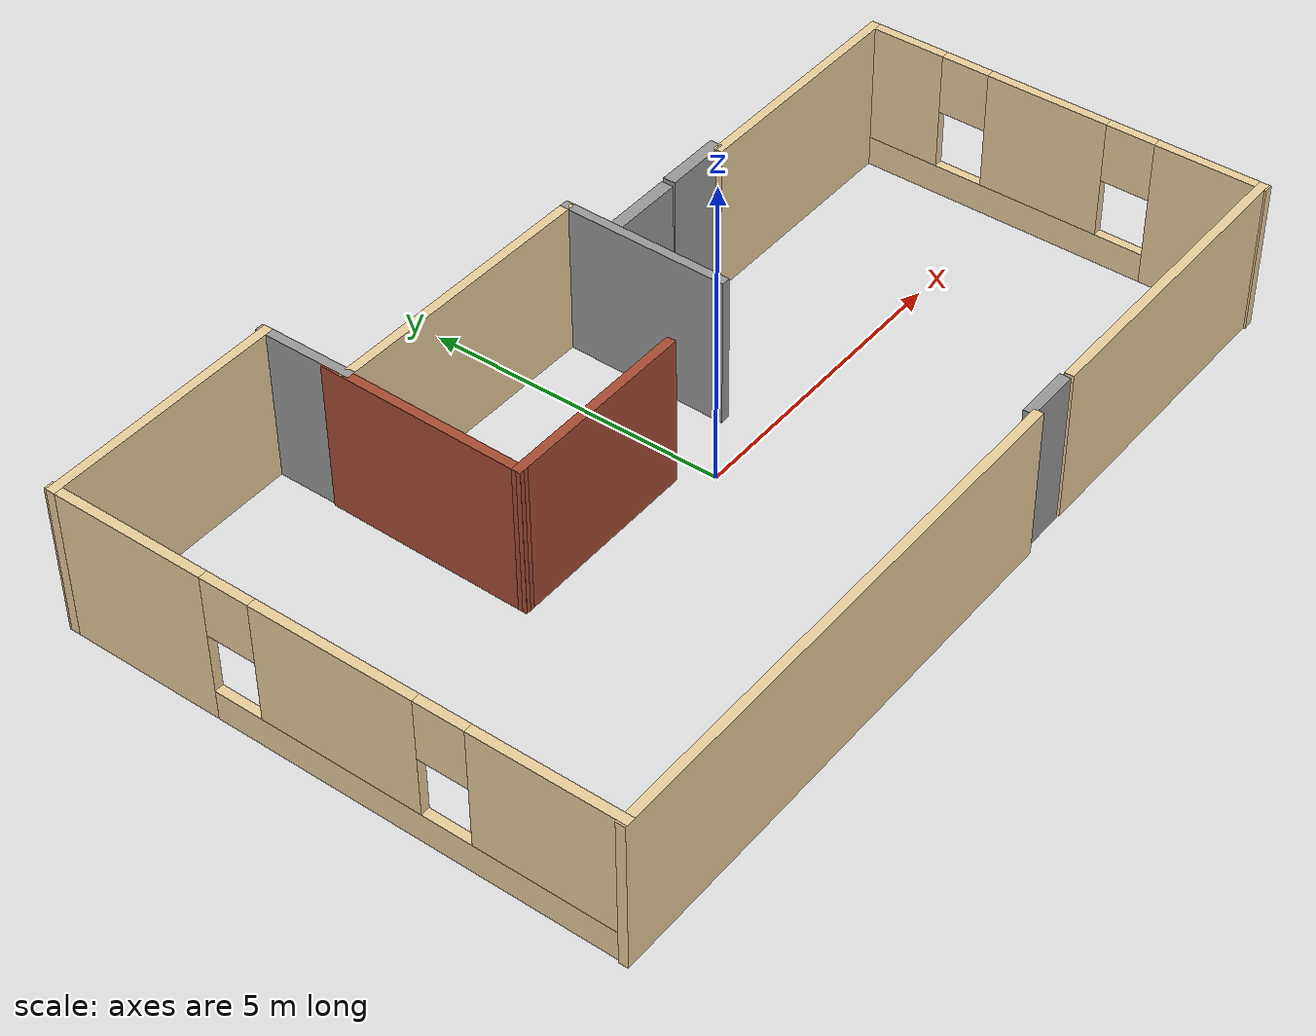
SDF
<?xml version='1.0'?>
<sdf version='1.7'>
  <model name='blossomsModel'>
    <pose>-0.049214 0.379374 0 0 -0 0</pose>
    <link name='Door_0'>
      <collision name='Door_0_Collision'>
        <geometry>
          <box>
            <size>0.9 0.17 2.5</size>
          </box>
        </geometry>
        <pose>0 0 1.25 0 -0 0</pose>
      </collision>
      <visual name='Door_0_Visual'>
        <pose>0 0 1.25 0 -0 0</pose>
        <geometry>
          <box>
            <size>0.9 0.17 2.5</size>
          </box>
        </geometry>
        <material>
          <script>
            <uri>file://media/materials/scripts/gazebo.material</uri>
            <name>Gazebo/Grey</name>
          </script>
        </material>
      </visual>
      <pose>1.72981 -4.45686 0 0 -0 0</pose>
    </link>
    <link name='Door_1'>
      <collision name='Door_1_Collision'>
        <geometry>
          <box>
            <size>1.206 0.2 2.5</size>
          </box>
        </geometry>
        <pose>0 0 1.25 0 -0 0</pose>
      </collision>
      <visual name='Door_1_Visual'>
        <pose>0 0 1.25 0 -0 0</pose>
        <geometry>
          <box>
            <size>1.206 0.2 2.5</size>
          </box>
        </geometry>
        <material>
          <script>
            <uri>file://media/materials/scripts/gazebo.material</uri>
            <name>Gazebo/Grey</name>
          </script>
        </material>
      </visual>
      <pose>1.73325 2.19076 0 0 -0 0</pose>
    </link>
    <link name='Door_2'>
      <collision name='Door_2_Collision'>
        <geometry>
          <box>
            <size>1.11 0.2 2.5</size>
          </box>
        </geometry>
        <pose>0 0 1.25 0 -0 0</pose>
      </collision>
      <visual name='Door_2_Visual'>
        <pose>0 0 1.25 0 -0 0</pose>
        <geometry>
          <box>
            <size>1.11 0.2 2.5</size>
          </box>
        </geometry>
        <material>
          <script>
            <uri>file://media/materials/scripts/gazebo.material</uri>
            <name>Gazebo/Grey</name>
          </script>
        </material>
      </visual>
      <pose>2.97215 2.22135 0 0 -0 0</pose>
    </link>
    <link name='Wall_0'>
      <collision name='Wall_0_Collision'>
        <geometry>
          <box>
            <size>2.84614 0.15 2.5</size>
          </box>
        </geometry>
        <pose>0 0 1.25 0 -0 0</pose>
      </collision>
      <visual name='Wall_0_Visual'>
        <pose>0 0 1.25 0 -0 0</pose>
        <geometry>
          <box>
            <size>2.84614 0.15 2.5</size>
          </box>
        </geometry>
        <material>
          <script>
            <uri>file://media/materials/scripts/gazebo.material</uri>
            <name>Gazebo/Grey</name>
          </script>
          <ambient>1 1 1 1</ambient>
        </material>
        <meta>
          <layer>0</layer>
        </meta>
      </visual>
      <pose>1.10271 1.66319 0 0 -0 1.55945</pose>
    </link>
    <link name='Wall_1'>
      <collision name='Wall_1_Collision'>
        <geometry>
          <box>
            <size>4.67868 0.15 2.5</size>
          </box>
        </geometry>
        <pose>0 0 1.25 0 -0 0</pose>
      </collision>
      <visual name='Wall_1_Visual'>
        <pose>0 0 1.25 0 -0 0</pose>
        <geometry>
          <box>
            <size>4.67868 0.15 2.5</size>
          </box>
        </geometry>
        <material>
          <script>
            <uri>file://media/materials/scripts/gazebo.material</uri>
            <name>Gazebo/Grey</name>
          </script>
          <ambient>0.921569 0.807843 0.615686 1</ambient>
        </material>
        <meta>
          <layer>0</layer>
        </meta>
      </visual>
      <pose>-1.17671 3.04177 0 0 -0 3.12808</pose>
    </link>
    <link name='Wall_10'>
      <collision name='Wall_10_Collision'>
        <geometry>
          <box>
            <size>5.1561 0.15 2.5</size>
          </box>
        </geometry>
        <pose>0 0 1.25 0 -0 0</pose>
      </collision>
      <visual name='Wall_10_Visual'>
        <pose>0 0 1.25 0 -0 0</pose>
        <geometry>
          <box>
            <size>5.1561 0.15 2.5</size>
          </box>
        </geometry>
        <material>
          <script>
            <uri>file://media/materials/scripts/gazebo.material</uri>
            <name>Gazebo/Grey</name>
          </script>
          <ambient>0.921569 0.807843 0.615686 1</ambient>
        </material>
        <meta>
          <layer>0</layer>
        </meta>
      </visual>
      <pose>4.8107 -4.4886 0 0 -0 -0.003494</pose>
    </link>
    <link name='Wall_11'>
      <pose>7.31374 -1.22794 0 0 -0 1.5708</pose>
      <visual name='Wall_11_Visual_0'>
        <pose>-2.47195 0 1.25 0 -0 0</pose>
        <geometry>
          <box>
            <size>1.80611 0.15 2.5</size>
          </box>
        </geometry>
        <material>
          <script>
            <uri>file://media/materials/scripts/gazebo.material</uri>
            <name>Gazebo/Grey</name>
          </script>
          <ambient>0.921569 0.807843 0.615686 1</ambient>
        </material>
        <meta>
          <layer>0</layer>
        </meta>
      </visual>
      <collision name='Wall_11_Collision_0'>
        <geometry>
          <box>
            <size>1.80611 0.15 2.5</size>
          </box>
        </geometry>
        <pose>-2.47195 0 1.25 0 -0 0</pose>
      </collision>
      <visual name='Wall_11_Visual_1'>
        <pose>0.903054 0 0.25 0 -0 0</pose>
        <geometry>
          <box>
            <size>4.94389 0.15 0.5</size>
          </box>
        </geometry>
        <material>
          <script>
            <uri>file://media/materials/scripts/gazebo.material</uri>
            <name>Gazebo/Grey</name>
          </script>
          <ambient>0.921569 0.807843 0.615686 1</ambient>
        </material>
        <meta>
          <layer>0</layer>
        </meta>
      </visual>
      <collision name='Wall_11_Collision_1'>
        <geometry>
          <box>
            <size>4.94389 0.15 0.5</size>
          </box>
        </geometry>
        <pose>0.903054 0 0.25 0 -0 0</pose>
      </collision>
      <visual name='Wall_11_Visual_2'>
        <pose>0.240919 0 1.5 0 -0 0</pose>
        <geometry>
          <box>
            <size>2.01962 0.15 2</size>
          </box>
        </geometry>
        <material>
          <script>
            <uri>file://media/materials/scripts/gazebo.material</uri>
            <name>Gazebo/Grey</name>
          </script>
          <ambient>0.921569 0.807843 0.615686 1</ambient>
        </material>
        <meta>
          <layer>0</layer>
        </meta>
      </visual>
      <collision name='Wall_11_Collision_2'>
        <geometry>
          <box>
            <size>2.01962 0.15 2</size>
          </box>
        </geometry>
        <pose>0.240919 0 1.5 0 -0 0</pose>
      </collision>
      <visual name='Wall_11_Visual_3'>
        <pose>2.71286 0 1.5 0 -0 0</pose>
        <geometry>
          <box>
            <size>1.32427 0.15 2</size>
          </box>
        </geometry>
        <material>
          <script>
            <uri>file://media/materials/scripts/gazebo.material</uri>
            <name>Gazebo/Grey</name>
          </script>
          <ambient>0.921569 0.807843 0.615686 1</ambient>
        </material>
        <meta>
          <layer>0</layer>
        </meta>
      </visual>
      <collision name='Wall_11_Collision_3'>
        <geometry>
          <box>
            <size>1.32427 0.15 2</size>
          </box>
        </geometry>
        <pose>2.71286 0 1.5 0 -0 0</pose>
      </collision>
      <visual name='Wall_11_Visual_4'>
        <pose>-1.16889 0 2 0 -0 0</pose>
        <geometry>
          <box>
            <size>0.8 0.15 1</size>
          </box>
        </geometry>
        <material>
          <script>
            <uri>file://media/materials/scripts/gazebo.material</uri>
            <name>Gazebo/Grey</name>
          </script>
          <ambient>0.921569 0.807843 0.615686 1</ambient>
        </material>
        <meta>
          <layer>0</layer>
        </meta>
      </visual>
      <collision name='Wall_11_Collision_4'>
        <geometry>
          <box>
            <size>0.8 0.15 1</size>
          </box>
        </geometry>
        <pose>-1.16889 0 2 0 -0 0</pose>
      </collision>
      <visual name='Wall_11_Visual_5'>
        <pose>1.65073 0 2 0 -0 0</pose>
        <geometry>
          <box>
            <size>0.8 0.15 1</size>
          </box>
        </geometry>
        <material>
          <script>
            <uri>file://media/materials/scripts/gazebo.material</uri>
            <name>Gazebo/Grey</name>
          </script>
          <ambient>0.921569 0.807843 0.615686 1</ambient>
        </material>
        <meta>
          <layer>0</layer>
        </meta>
      </visual>
      <collision name='Wall_11_Collision_5'>
        <geometry>
          <box>
            <size>0.8 0.15 1</size>
          </box>
        </geometry>
        <pose>1.65073 0 2 0 -0 0</pose>
      </collision>
    </link>
    <link name='Wall_12'>
      <collision name='Wall_12_Collision'>
        <geometry>
          <box>
            <size>4 0.15 2.5</size>
          </box>
        </geometry>
        <pose>0 0 1.25 0 -0 0</pose>
      </collision>
      <visual name='Wall_12_Visual'>
        <pose>0 0 1.25 0 -0 0</pose>
        <geometry>
          <box>
            <size>4 0.15 2.5</size>
          </box>
        </geometry>
        <material>
          <script>
            <uri>file://media/materials/scripts/gazebo.material</uri>
            <name>Gazebo/Grey</name>
          </script>
          <ambient>0.921569 0.807843 0.615686 1</ambient>
        </material>
        <meta>
          <layer>0</layer>
        </meta>
      </visual>
      <pose>5.38874 2.10265 0 0 -0 3.14159</pose>
    </link>
    <link name='Wall_2'>
      <collision name='Wall_2_Collision'>
        <geometry>
          <box>
            <size>1.63184 0.15 2.5</size>
          </box>
        </geometry>
        <pose>0 0 1.25 0 -0 0</pose>
      </collision>
      <visual name='Wall_2_Visual'>
        <pose>0 0 1.25 0 -0 0</pose>
        <geometry>
          <box>
            <size>1.63184 0.15 2.5</size>
          </box>
        </geometry>
        <material>
          <script>
            <uri>file://media/materials/scripts/gazebo.material</uri>
            <name>Gazebo/Grey</name>
          </script>
          <ambient>1 1 1 1</ambient>
        </material>
        <meta>
          <layer>0</layer>
        </meta>
      </visual>
      <pose>-3.41025 3.81328 0 0 -0 1.5708</pose>
    </link>
    <link name='Wall_3'>
      <collision name='Wall_3_Collision'>
        <geometry>
          <box>
            <size>4.02315 0.15 2.5</size>
          </box>
        </geometry>
        <pose>0 0 1.25 0 -0 0</pose>
      </collision>
      <visual name='Wall_3_Visual'>
        <pose>0 0 1.25 0 -0 0</pose>
        <geometry>
          <box>
            <size>4.02315 0.15 2.5</size>
          </box>
        </geometry>
        <material>
          <script>
            <uri>file://media/materials/scripts/gazebo.material</uri>
            <name>Gazebo/Grey</name>
          </script>
          <ambient>0.921569 0.807843 0.615686 1</ambient>
        </material>
        <meta>
          <layer>0</layer>
        </meta>
      </visual>
      <pose>-5.34683 4.52361 0 0 -0 3.14159</pose>
    </link>
    <link name='Wall_4'>
      <pose>-7.28341 -0 0 0 -0 -1.5708</pose>
      <visual name='Wall_4_Visual_0'>
        <pose>-3.29946 0 1.25 0 -0 0</pose>
        <geometry>
          <box>
            <size>2.65947 0.15 2.5</size>
          </box>
        </geometry>
        <material>
          <script>
            <uri>file://media/materials/scripts/gazebo.material</uri>
            <name>Gazebo/Grey</name>
          </script>
          <ambient>0.921569 0.807843 0.615686 1</ambient>
        </material>
        <meta>
          <layer>0</layer>
        </meta>
      </visual>
      <collision name='Wall_4_Collision_0'>
        <geometry>
          <box>
            <size>2.65947 0.15 2.5</size>
          </box>
        </geometry>
        <pose>-3.29946 0 1.25 0 -0 0</pose>
      </collision>
      <visual name='Wall_4_Visual_1'>
        <pose>1.32973 0 0.25 0 -0 0</pose>
        <geometry>
          <box>
            <size>6.59893 0.15 0.5</size>
          </box>
        </geometry>
        <material>
          <script>
            <uri>file://media/materials/scripts/gazebo.material</uri>
            <name>Gazebo/Grey</name>
          </script>
          <ambient>0.921569 0.807843 0.615686 1</ambient>
        </material>
        <meta>
          <layer>0</layer>
        </meta>
      </visual>
      <collision name='Wall_4_Collision_1'>
        <geometry>
          <box>
            <size>6.59893 0.15 0.5</size>
          </box>
        </geometry>
        <pose>1.32973 0 0.25 0 -0 0</pose>
      </collision>
      <visual name='Wall_4_Visual_2'>
        <pose>0.13644 0 1.5 0 -0 0</pose>
        <geometry>
          <box>
            <size>2.61234 0.15 2</size>
          </box>
        </geometry>
        <material>
          <script>
            <uri>file://media/materials/scripts/gazebo.material</uri>
            <name>Gazebo/Grey</name>
          </script>
          <ambient>0.921569 0.807843 0.615686 1</ambient>
        </material>
        <meta>
          <layer>0</layer>
        </meta>
      </visual>
      <collision name='Wall_4_Collision_2'>
        <geometry>
          <box>
            <size>2.61234 0.15 2</size>
          </box>
        </geometry>
        <pose>0.13644 0 1.5 0 -0 0</pose>
      </collision>
      <visual name='Wall_4_Visual_3'>
        <pose>3.4359 0 1.5 0 -0 0</pose>
        <geometry>
          <box>
            <size>2.38659 0.15 2</size>
          </box>
        </geometry>
        <material>
          <script>
            <uri>file://media/materials/scripts/gazebo.material</uri>
            <name>Gazebo/Grey</name>
          </script>
          <ambient>0.921569 0.807843 0.615686 1</ambient>
        </material>
        <meta>
          <layer>0</layer>
        </meta>
      </visual>
      <collision name='Wall_4_Collision_3'>
        <geometry>
          <box>
            <size>2.38659 0.15 2</size>
          </box>
        </geometry>
        <pose>3.4359 0 1.5 0 -0 0</pose>
      </collision>
      <visual name='Wall_4_Visual_4'>
        <pose>-1.56973 0 2 0 -0 0</pose>
        <geometry>
          <box>
            <size>0.8 0.15 1</size>
          </box>
        </geometry>
        <material>
          <script>
            <uri>file://media/materials/scripts/gazebo.material</uri>
            <name>Gazebo/Grey</name>
          </script>
          <ambient>0.921569 0.807843 0.615686 1</ambient>
        </material>
        <meta>
          <layer>0</layer>
        </meta>
      </visual>
      <collision name='Wall_4_Collision_4'>
        <geometry>
          <box>
            <size>0.8 0.15 1</size>
          </box>
        </geometry>
        <pose>-1.56973 0 2 0 -0 0</pose>
      </collision>
      <visual name='Wall_4_Visual_5'>
        <pose>1.84261 0 2 0 -0 0</pose>
        <geometry>
          <box>
            <size>0.8 0.15 1</size>
          </box>
        </geometry>
        <material>
          <script>
            <uri>file://media/materials/scripts/gazebo.material</uri>
            <name>Gazebo/Grey</name>
          </script>
          <ambient>0.921569 0.807843 0.615686 1</ambient>
        </material>
        <meta>
          <layer>0</layer>
        </meta>
      </visual>
      <collision name='Wall_4_Collision_5'>
        <geometry>
          <box>
            <size>0.8 0.15 1</size>
          </box>
        </geometry>
        <pose>1.84261 0 2 0 -0 0</pose>
      </collision>
    </link>
    <link name='Wall_5'>
      <collision name='Wall_5_Collision'>
        <geometry>
          <box>
            <size>8.77315 0.15 2.5</size>
          </box>
        </geometry>
        <pose>0 0 1.25 0 -0 0</pose>
      </collision>
      <visual name='Wall_5_Visual'>
        <pose>0 0 1.25 0 -0 0</pose>
        <geometry>
          <box>
            <size>8.77315 0.15 2.5</size>
          </box>
        </geometry>
        <material>
          <script>
            <uri>file://media/materials/scripts/gazebo.material</uri>
            <name>Gazebo/Grey</name>
          </script>
          <ambient>0.921569 0.807843 0.615686 1</ambient>
        </material>
        <meta>
          <layer>0</layer>
        </meta>
      </visual>
      <pose>-3.00242 -4.5542 0 0 -0 0</pose>
    </link>
    <link name='Wall_7'>
      <collision name='Wall_7_Collision'>
        <geometry>
          <box>
            <size>3.42148 0.15 2.5</size>
          </box>
        </geometry>
        <pose>0 0 1.25 0 -0 0</pose>
      </collision>
      <visual name='Wall_7_Visual'>
        <pose>0 0 1.25 0 -0 0</pose>
        <geometry>
          <box>
            <size>3.42148 0.15 2.5</size>
          </box>
        </geometry>
        <material>
          <script>
            <uri>file://media/materials/scripts/gazebo.material</uri>
            <name>Gazebo/Bricks</name>
          </script>
          <ambient>1 1 1 1</ambient>
        </material>
        <meta>
          <layer>0</layer>
        </meta>
      </visual>
      <pose>-3.46375 1.73866 0 0 -0 -1.58536</pose>
    </link>
    <link name='Wall_8'>
      <collision name='Wall_8_Collision'>
        <geometry>
          <box>
            <size>3.25 0.15 2.5</size>
          </box>
        </geometry>
        <pose>0 0 1.25 0 -0 0</pose>
      </collision>
      <visual name='Wall_8_Visual'>
        <pose>0 0 1.25 0 -0 0</pose>
        <geometry>
          <box>
            <size>3.25 0.15 2.5</size>
          </box>
        </geometry>
        <material>
          <script>
            <uri>file://media/materials/scripts/gazebo.material</uri>
            <name>Gazebo/Bricks</name>
          </script>
          <ambient>1 1 1 1</ambient>
        </material>
        <meta>
          <layer>0</layer>
        </meta>
      </visual>
      <pose>-1.93756 0.103096 0 0 -0 0</pose>
    </link>
    <static>1</static>
  </model>
</sdf>
